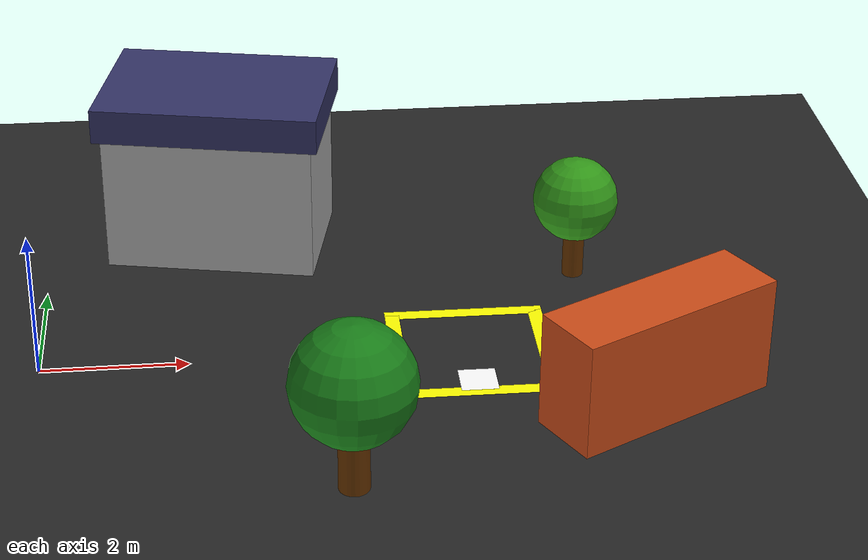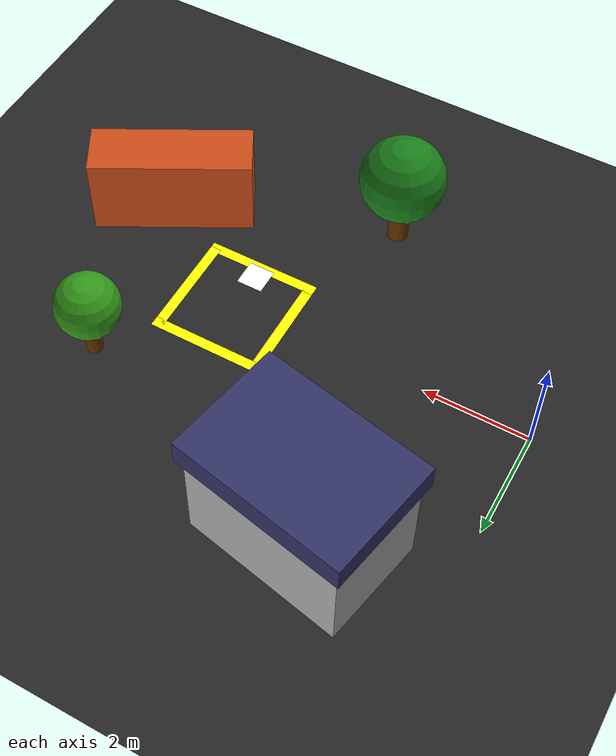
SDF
<?xml version="1.0" encoding="UTF-8"?>
<sdf version="1.9">
  <world name="inspection_moving">
    <physics type="ode">
      <max_step_size>0.004</max_step_size>
      <real_time_factor>1.0</real_time_factor>
      <real_time_update_rate>250</real_time_update_rate>
    </physics>
    <gravity>0 0 -9.8</gravity>
    <magnetic_field>6e-06 2.3e-05 -4.2e-05</magnetic_field>
    <atmosphere type="adiabatic"/>

    <scene>
      <grid>false</grid>
      <ambient>0.6 0.6 0.6 1</ambient>
      <background>0.7 0.7 0.7 1</background>
      <shadows>true</shadows>
      <sky>
        <clouds>
          <speed>0.6</speed>
        </clouds>
      </sky>
    </scene>

    <!-- Ground Plane (matches PX4 default.sdf exactly) -->
    <model name="ground_plane">
      <static>true</static>
      <link name="link">
        <collision name="collision">
          <geometry>
            <plane>
              <normal>0 0 1</normal>
              <size>1 1</size>
            </plane>
          </geometry>
          <surface>
            <friction>
              <ode/>
            </friction>
            <bounce/>
            <contact/>
          </surface>
        </collision>
        <visual name="visual">
          <geometry>
            <plane>
              <normal>0 0 1</normal>
              <size>500 500</size>
            </plane>
          </geometry>
          <material>
            <ambient>0.15 0.15 0.15 1</ambient>
            <diffuse>0.15 0.15 0.15 1</diffuse>
            <specular>0.05 0.05 0.05 1</specular>
          </material>
        </visual>
        <pose>0 0 0 0 -0 0</pose>
        <inertial>
          <pose>0 0 0 0 -0 0</pose>
          <mass>1</mass>
          <inertia>
            <ixx>1</ixx>
            <ixy>0</ixy>
            <ixz>0</ixz>
            <iyy>1</iyy>
            <iyz>0</iyz>
            <izz>1</izz>
          </inertia>
        </inertial>
        <enable_wind>false</enable_wind>
      </link>
      <pose>0 0 0 0 -0 0</pose>
      <self_collide>false</self_collide>
    </model>

    <!-- Sun -->
    <light name="sunUTC" type="directional">
      <pose>0 0 500 0 -0 0</pose>
      <cast_shadows>true</cast_shadows>
      <intensity>1</intensity>
      <direction>0.001 0.625 -0.78</direction>
      <diffuse>0.904 0.904 0.904 1</diffuse>
      <specular>0.271 0.271 0.271 1</specular>
      <attenuation>
        <range>2000</range>
        <linear>0</linear>
        <constant>1</constant>
        <quadratic>0</quadratic>
      </attenuation>
      <spot>
        <inner_angle>0</inner_angle>
        <outer_angle>0</outer_angle>
        <falloff>0</falloff>
      </spot>
    </light>

    <!-- Moving ArUco Marker Platform -->
    <model name='moving_aruco_platform'>
      <pose>5.8 -0.75 0.011 0 0 0</pose>
      <static>false</static>
      <link name="link">
        <kinematic>true</kinematic>
        <gravity>false</gravity>
        <collision name="collision">
          <geometry>
            <box>
              <size>0.5 0.5 0.02</size>
            </box>
          </geometry>
        </collision>
        <sensor name="platform_contact" type="contact">
          <contact>
            <collision>collision</collision>
          </contact>
        </sensor>
        <visual name="visual">
          <pose>0 0 0.011 0 0 0</pose>
          <geometry>
            <plane>
              <normal>0 0 1</normal>
              <size>0.5 0.5</size>
            </plane>
          </geometry>
          <material>
            <diffuse>1 1 1 1</diffuse>
            <specular>0 0 0 1</specular>
            <pbr>
              <metal>
                <albedo_map>model://aruco_landing_pad/aruco_marker_0.png</albedo_map>
                <roughness>1.0</roughness>
                <metalness>0.0</metalness>
              </metal>
            </pbr>
          </material>
        </visual>
      </link>
      <plugin filename="gz-sim-velocity-control-system" name="gz::sim::systems::VelocityControl">
        <topic>/model/moving_aruco_platform/cmd_vel</topic>
      </plugin>
      <plugin filename="gz-sim-pose-publisher-system" name="gz::sim::systems::PosePublisher">
        <publish_link_pose>false</publish_link_pose>
        <publish_collision_pose>false</publish_collision_pose>
        <publish_visual_pose>false</publish_visual_pose>
        <publish_nested_model_pose>false</publish_nested_model_pose>
        <publish_model_pose>true</publish_model_pose>
        <use_pose_vector_msg>false</use_pose_vector_msg>
        <update_frequency>20</update_frequency>
      </plugin>
      <plugin filename="gz-sim-contact-system" name="gz::sim::systems::Contact"/>
    </model>

    <spherical_coordinates>
      <surface_model>EARTH_WGS84</surface_model>
      <world_frame_orientation>ENU</world_frame_orientation>
      <latitude_deg>47.397971057728974</latitude_deg>
      <longitude_deg>8.546163739800146</longitude_deg>
      <elevation>0</elevation>
    </spherical_coordinates>
    <!-- Realistic Polish Entities -->

    <!-- Tree 1 -->
    <model name='tree_1'>
      <pose>4.0 -3.0 0 0 0 0</pose>
      <static>true</static>
      <!-- Trunk -->
      <link name='trunk'>
        <pose>0 0 0.5 0 0 0</pose>
        <visual name='trunk_visual'>
          <geometry><cylinder><radius>0.2</radius><length>1.0</length></cylinder></geometry>
          <material>
            <ambient>0.4 0.2 0.0 1</ambient>
            <diffuse>0.4 0.2 0.0 1</diffuse>
          </material>
        </visual>
        <collision name='trunk_collision'>
          <geometry><cylinder><radius>0.2</radius><length>1.0</length></cylinder></geometry>
        </collision>
      </link>
      <!-- Leaves -->
      <link name='leaves'>
        <pose>0 0 1.5 0 0 0</pose>
        <visual name='leaves_visual'>
          <geometry><sphere><radius>0.8</radius></sphere></geometry>
          <material>
            <ambient>0.1 0.5 0.1 1</ambient>
            <diffuse>0.1 0.5 0.1 1</diffuse>
          </material>
        </visual>
        <collision name='leaves_collision'>
          <geometry><sphere><radius>0.8</radius></sphere></geometry>
        </collision>
      </link>
    </model>

    <!-- Tree 2 -->
    <model name='tree_2'>
      <pose>7.5 2.0 0 0 0 0</pose>
      <static>true</static>
      <link name='trunk'>
        <pose>0 0 0.4 0 0 0</pose>
        <visual name='trunk_visual'>
          <geometry><cylinder><radius>0.15</radius><length>0.8</length></cylinder></geometry>
          <material>
            <ambient>0.4 0.2 0.0 1</ambient>
            <diffuse>0.4 0.2 0.0 1</diffuse>
          </material>
        </visual>
      </link>
      <link name='leaves'>
        <pose>0 0 1.2 0 0 0</pose>
        <visual name='leaves_visual'>
          <geometry><sphere><radius>0.6</radius></sphere></geometry>
          <material>
            <ambient>0.2 0.6 0.1 1</ambient>
            <diffuse>0.2 0.6 0.1 1</diffuse>
          </material>
        </visual>
      </link>
    </model>

    <!-- Building / Warehouse -->
    <model name='warehouse'>
      <pose>2.5 3.5 0 0 0 -0.2</pose>
      <static>true</static>
      <link name='base'>
        <pose>0 0 1.0 0 0 0</pose>
        <visual name='base_visual'>
          <geometry><box><size>3.0 2.0 2.0</size></box></geometry>
          <material>
            <ambient>0.7 0.7 0.7 1</ambient>
            <diffuse>0.7 0.7 0.7 1</diffuse>
          </material>
        </visual>
        <collision name='base_collision'>
          <geometry><box><size>3.0 2.0 2.0</size></box></geometry>
        </collision>
      </link>
      <link name='roof'>
        <pose>0 0 2.25 0 0 0</pose>
        <visual name='roof_visual'>
          <geometry><box><size>3.2 2.2 0.5</size></box></geometry>
          <material>
            <ambient>0.2 0.2 0.4 1</ambient>
            <diffuse>0.2 0.2 0.4 1</diffuse>
          </material>
        </visual>
        <collision name='roof_collision'>
          <geometry><box><size>3.2 2.2 0.5</size></box></geometry>
        </collision>
      </link>
    </model>

    <!-- Shipping Container -->
    <model name='shipping_container'>
      <pose>8.0 -1.5 0 0 0 0.5</pose>
      <static>true</static>
      <link name='body'>
        <pose>0 0 0.8 0 0 0</pose>
        <visual name='visual'>
          <geometry><box><size>3.0 1.0 1.6</size></box></geometry>
          <material>
            <ambient>0.8 0.3 0.1 1</ambient>
            <diffuse>0.8 0.3 0.1 1</diffuse>
          </material>
        </visual>
        <collision name='collision'>
          <geometry><box><size>3.0 1.0 1.6</size></box></geometry>
        </collision>
      </link>
    </model>

    <!-- Landing Zone Markings -->
    <model name='lz_border'>
      <pose>5.8 0 0.005 0 0 0</pose>
      <static>true</static>
      <link name='border'>
        <visual name='v1'>
          <pose>0 1.0 0 0 0 0</pose>
          <geometry><box><size>2.2 0.2 0.001</size></box></geometry>
          <material><ambient>1 1 0 1</ambient><diffuse>1 1 0 1</diffuse></material>
        </visual>
        <visual name='v2'>
          <pose>0 -1.0 0 0 0 0</pose>
          <geometry><box><size>2.2 0.2 0.001</size></box></geometry>
          <material><ambient>1 1 0 1</ambient><diffuse>1 1 0 1</diffuse></material>
        </visual>
        <visual name='v3'>
          <pose>1.0 0 0 0 0 0</pose>
          <geometry><box><size>0.2 2.0 0.001</size></box></geometry>
          <material><ambient>1 1 0 1</ambient><diffuse>1 1 0 1</diffuse></material>
        </visual>
        <visual name='v4'>
          <pose>-1.0 0 0 0 0 0</pose>
          <geometry><box><size>0.2 2.0 0.001</size></box></geometry>
          <material><ambient>1 1 0 1</ambient><diffuse>1 1 0 1</diffuse></material>
        </visual>
      </link>
    </model>

  </world>
</sdf>
